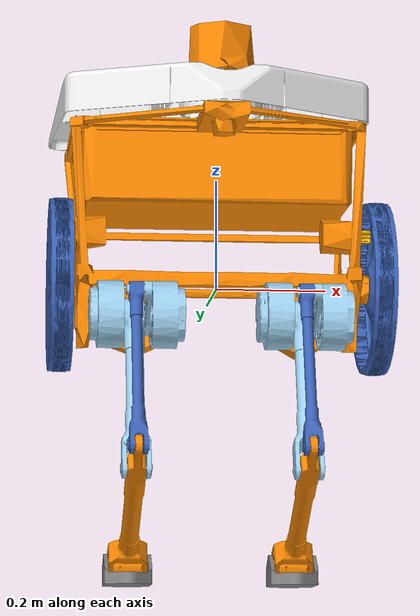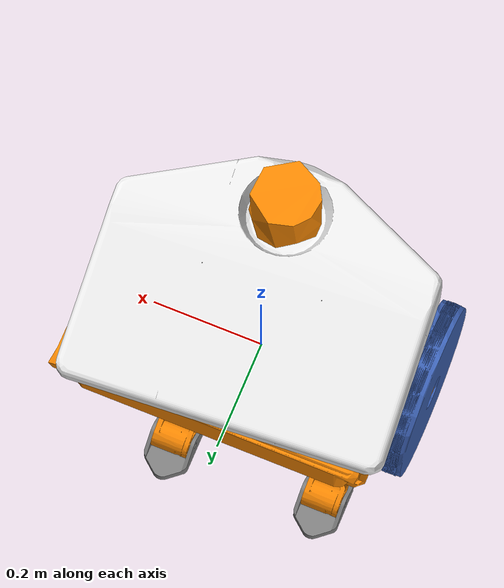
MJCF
<?xml version="1.0" ?>
<!-- Generated using onshape-to-robot -->
<!-- Onshape https://cad.onshape.com/documents/d33ee4be47748debca1f193d/w/b71ca2b26fc569bc49f65e9e/e/9264a6d7363f17e1122831e3 -->
<mujoco model="robot">
  <compiler angle="radian" meshdir="assets" autolimits="true"/>
  <default>
    <default class="robot">
      <joint frictionloss="0.1" armature="0.005"/>
      <position kp="1" dampratio="0.9"/>
      <default class="visual">
        <geom type="mesh" contype="0" conaffinity="0" group="2"/>
      </default>
      <default class="collision">
        <geom group="3"/>
      </default>
    </default>
  </default>
  <worldbody>
    <!-- Link frame -->
    <body name="frame" pos="0 0 0" quat="1 0 0 0" childclass="robot">
      <freejoint name="frame_freejoint"/>
      <inertial pos="-0.000823 0.029329 0.148969" mass="10.9798" fullinertia="0.340511 0.452579 0.318421 -0.000963811 0.00150348 0.0614132"/>
      <!-- Part frame -->
      <geom type="mesh" class="visual" pos="8.32667e-17 0.09279 0.151192" quat="1 0 0 -3.28079e-18" mesh="frame" material="frame_material"/>
      <geom type="mesh" class="collision" pos="8.32667e-17 0.09279 0.151192" quat="1 0 0 -3.28079e-18" mesh="frame" material="frame_material"/>
      <!-- Frame imu -->
      <site group="3" name="imu" pos="-2.77556e-17 -0.0127 0.0281165" quat="1 -0 -0 -3.28079e-18"/>
      <!-- Link wheel -->
      <body name="wheel" pos="-0.2968 -0.0304 -0.000423519" quat="0.5 -0.5 -0.5 0.5">
        <!-- Joint from frame to wheel -->
        <joint axis="0 0 1" name="wheel0" type="hinge"/>
        <inertial pos="-9.89636e-09 -3.55249e-08 -0.007652" mass="0.706823" fullinertia="0.00423992 0.00423992 0.00829168 1.12985e-09 -2.2045e-10 -1.81177e-11"/>
        <!-- Part wheel -->
        <geom type="mesh" class="visual" pos="0.0527022 -0.188111 -0.2968" quat="0.387994 0.591152 0.387994 -0.591152" mesh="wheel" material="wheel_material"/>
        <geom type="mesh" class="collision" pos="0.0527022 -0.188111 -0.2968" quat="0.387994 0.591152 0.387994 -0.591152" mesh="wheel" material="wheel_material"/>
      </body>
      <!-- Link wheel_2 -->
      <body name="wheel_2" pos="0.271842 -0.0304 -0.000423519" quat="0.5 -0.5 -0.5 0.5">
        <!-- Joint from frame to wheel_2 -->
        <joint axis="0 0 1" name="wheel1" type="hinge"/>
        <inertial pos="5.0538e-09 3.65296e-08 -0.0173055" mass="0.706823" fullinertia="0.00423992 0.00423992 0.00829168 -1.22924e-09 1.95045e-10 -1.04326e-10"/>
        <!-- Part wheel_2 -->
        <geom type="mesh" class="visual" pos="0.12319 0.151616 0.271842" quat="0.5 -0.5 -0.5 -0.5" mesh="wheel" material="wheel_material"/>
        <geom type="mesh" class="collision" pos="0.12319 0.151616 0.271842" quat="0.5 -0.5 -0.5 -0.5" mesh="wheel" material="wheel_material"/>
      </body>
      <!-- Link hip -->
      <body name="hip" pos="-0.15 -0.0259 -0.0623635" quat="0.707107 -0.707107 0 1.80763e-29">
        <!-- Joint from frame to hip -->
        <joint axis="0 0 1" name="hip0" type="hinge" range="-0.7853981633974456 0.5235987755983015"/>
        <inertial pos="-8.09567e-09 -3.63132e-09 -0.03801" mass="4.67744" fullinertia="0.0171206 0.025379 0.0167058 8.96117e-05 3.71946e-05 3.68544e-05"/>
        <!-- Part hip -->
        <geom type="mesh" class="visual" pos="0.15 -0.213556 0.11869" quat="0.707107 0.707107 -1.57009e-16 1.37307e-16" mesh="hip" material="hip_material"/>
        <geom type="mesh" class="collision" pos="0.15 -0.213556 0.11869" quat="0.707107 0.707107 -1.57009e-16 1.37307e-16" mesh="hip" material="hip_material"/>
        <!-- Link thigh -->
        <body name="thigh" pos="-0.03125 8.5279e-15 -0.07" quat="0.298836 0.640856 -0.298836 -0.640856">
          <!-- Joint from hip to thigh -->
          <joint axis="0 0 1" name="calf0" type="hinge" range="-1.0471975511966183 5.235987755982968"/>
          <inertial pos="-0.0859122 -0.13192 -0.023536" mass="0.43939" fullinertia="0.00431889 0.00192734 0.00604161 -0.00270689 -0.000102277 -0.00015704"/>
          <!-- Part thigh -->
          <geom type="mesh" class="visual" pos="0.18869 -0.213556 -0.18125" quat="0.5 0.5 0.5 -0.5" mesh="thigh" material="thigh_material"/>
          <geom type="mesh" class="collision" pos="0.18869 -0.213556 -0.18125" quat="0.5 0.5 0.5 -0.5" mesh="thigh" material="thigh_material"/>
          <!-- Frame closing_knee0_2 -->
          <site group="3" name="closing_knee0_2" pos="-0.160754 -0.247736 -0.02625" quat="9.93014e-17 0 1 -6.13716e-17"/>
          <!-- Frame closing_knee0_2_z -->
          <site group="3" name="closing_knee0_2_z" pos="-0.160754 -0.247736 -0.12625" quat="9.93014e-17 0 1 -6.13716e-17"/>
        </body>
        <!-- Link knee_kicker -->
        <body name="knee_kicker" pos="0.03125 -3.86496e-15 -0.07" quat="0.353553 -0.612372 0.353553 -0.612372">
          <!-- Joint from hip to knee_kicker -->
          <joint axis="0 0 1" name="driver0" type="hinge" range="-1.8325957145940461 1.0471975511965974"/>
          <inertial pos="9.25914e-05 0.0340895 -0.0160967" mass="0.178099" fullinertia="0.000233121 5.05159e-05 0.000230519 -4.91553e-07 1.2745e-07 4.73206e-05"/>
          <!-- Part knee_kicker -->
          <geom type="mesh" class="visual" pos="0.18869 0.213556 0.11875" quat="0.5 -0.5 -0.5 -0.5" mesh="knee_kicker" material="knee_kicker_material"/>
          <geom type="mesh" class="collision" pos="0.18869 0.213556 0.11875" quat="0.5 -0.5 -0.5 -0.5" mesh="knee_kicker" material="knee_kicker_material"/>
          <!-- Link align_bar -->
          <body name="align_bar" pos="0.000187756 0.0694547 -0.03625" quat="1 -1.22914e-16 9.95584e-17 1.38731e-17">
            <!-- Joint from knee_kicker to align_bar -->
            <joint axis="0 0 1" name="trochanter0" type="hinge" range="-2.7925268031910697 3.4906585039885165"/>
            <inertial pos="-0.183248 -0.0459481 1.92321e-07" mass="0.185504" fullinertia="0.000147955 0.00228229 0.00240181 -0.000518977 3.20539e-10 -1.26609e-10"/>
            <!-- Part align_bar -->
            <geom type="mesh" class="visual" pos="-0.0709391 0.22642 0.155" quat="0.696364 -0.122788 -0.696364 -0.122788" mesh="align_bar" material="align_bar_material"/>
            <geom type="mesh" class="collision" pos="-0.0709391 0.22642 0.155" quat="0.696364 -0.122788 -0.696364 -0.122788" mesh="align_bar" material="align_bar_material"/>
            <!-- Link calf -->
            <body name="calf" pos="-0.287777 -0.0663291 -1.38778e-16" quat="1 9.71057e-16 -2.28161e-16 1.00171e-13">
              <!-- Joint from align_bar to calf -->
              <joint axis="0 0 1" name="patella0" type="hinge" range="-2.268928027592682 0.8726646259971109"/>
              <inertial pos="0.00155668 -0.267205 0.0022" mass="0.803884" fullinertia="0.0155759 0.000660419 0.0157441 0.00195302 -2.76691e-05 0.000158799"/>
              <!-- Part calf -->
              <geom type="mesh" class="visual" pos="0.349257 -0.103635 0.155" quat="0.5 -0.5 -0.5 -0.5" mesh="calf" material="calf_material"/>
              <geom type="mesh" class="collision" pos="0.349257 -0.103635 0.155" quat="0.5 -0.5 -0.5 -0.5" mesh="calf" material="calf_material"/>
              <!-- Frame closing_knee0_1 -->
              <site group="3" name="closing_knee0_1" pos="-0.000187756 -0.0694547 1.52656e-15" quat="1 0 2.00018e-16 0"/>
              <!-- Frame closing_knee0_1_z -->
              <site group="3" name="closing_knee0_1_z" pos="-0.000187756 -0.0694547 0.1" quat="1 0 2.00018e-16 0"/>
              <!-- Link foot -->
              <body name="foot" pos="-0.000986093 -0.364776 0.0265" quat="7.76214e-16 0.91706 -0.398749 2.81356e-16">
                <!-- Joint from calf to foot -->
                <joint axis="0 0 1" name="ankle0" type="hinge" range="-1.86750229963394 0.22689280275925516"/>
                <inertial pos="-0.00556919 0.0243546 0.0256122" mass="0.257475" fullinertia="0.000225116 0.000525902 0.000396738 -7.25759e-05 1.27307e-06 -5.56728e-06"/>
                <!-- Part foot -->
                <geom type="mesh" class="visual" pos="0.350243 -0.261141 -0.1285" quat="0.5 0.5 0.5 -0.5" mesh="foot" material="foot_material"/>
                <geom type="mesh" class="collision" pos="0.350243 -0.261141 -0.1285" quat="0.5 0.5 0.5 -0.5" mesh="foot" material="foot_material"/>
              </body>
            </body>
          </body>
        </body>
      </body>
      <!-- Link lid_gear -->
      <body name="lid_gear" pos="-1.59109e-14 -0.156188 0.296632" quat="4.61876e-17 -1 0 1.1945e-16">
        <!-- Joint from frame to lid_gear -->
        <joint axis="0 0 1" name="lid_gear" type="hinge"/>
        <inertial pos="2.83267e-11 -2.71741e-11 -0.0145304" mass="0.0269539" fullinertia="3.68187e-06 3.68187e-06 3.96395e-06 -7.82395e-14 2.8598e-16 -2.74358e-16"/>
        <!-- Part lid_gear -->
        <geom type="mesh" class="visual" pos="2.17893e-15 -0.248978 0.14544" quat="0 1 0 0" mesh="lid_gear" material="lid_gear_material"/>
        <geom type="mesh" class="collision" pos="2.17893e-15 -0.248978 0.14544" quat="0 1 0 0" mesh="lid_gear" material="lid_gear_material"/>
      </body>
      <!-- Link lid -->
      <body name="lid" pos="5.76937e-17 -0.10334 0.350282" quat="1 0 0 -3.28079e-18">
        <!-- Joint from frame to lid -->
        <joint axis="0 0 1" name="lid" type="hinge" range="-2.0943951023931953 2.0943951023931953"/>
        <inertial pos="-0.003 0.041901 0.00869678" mass="2.8182" fullinertia="0.0336992 0.0334501 0.0544816 -7.3482e-05 -0.000189806 0.00185238"/>
        <!-- Part lid -->
        <geom type="mesh" class="visual" pos="2.60209e-17 0.19613 -0.20009" quat="1 -0 -0 -3.65811e-18" mesh="lid" material="lid_material"/>
        <geom type="mesh" class="collision" pos="2.60209e-17 0.19613 -0.20009" quat="1 -0 -0 -3.65811e-18" mesh="lid" material="lid_material"/>
      </body>
      <!-- Link wheel_gear -->
      <body name="wheel_gear" pos="-0.277842 0.0470328 0.110162" quat="0.5 0.5 0.5 0.5">
        <!-- Joint from frame to wheel_gear -->
        <joint axis="0 0 1" name="motor0" type="hinge"/>
        <inertial pos="-2.14167e-05 -5.33217e-06 2.77556e-16" mass="0.0457202" fullinertia="3.55972e-06 3.55596e-06 2.94313e-06 9.99754e-10 -5.04485e-23 2.66349e-23"/>
        <!-- Part wheel_gear -->
        <geom type="mesh" class="visual" pos="0.0504398 -0.0351145 0.275542" quat="0.0817215 -0.702369 -0.0817215 -0.702369" mesh="wheel_gear" material="wheel_gear_material"/>
        <geom type="mesh" class="collision" pos="0.0504398 -0.0351145 0.275542" quat="0.0817215 -0.702369 -0.0817215 -0.702369" mesh="wheel_gear" material="wheel_gear_material"/>
      </body>
      <!-- Link wheel_gear_2 -->
      <body name="wheel_gear_2" pos="0.277842 0.0470328 0.110162" quat="0.5 -0.5 -0.5 0.5">
        <!-- Joint from frame to wheel_gear_2 -->
        <joint axis="0 0 1" name="motor1" type="hinge"/>
        <inertial pos="2.72562e-07 2.20689e-05 -1.11022e-16" mass="0.0457202" fullinertia="3.55571e-06 3.55997e-06 2.94313e-06 5.26601e-11 -4.19297e-27 -4.91151e-23"/>
        <!-- Part wheel_gear_2 -->
        <geom type="mesh" class="visual" pos="0.0457572 -0.0410302 -0.275543" quat="0.5 0.5 0.5 -0.5" mesh="wheel_gear" material="wheel_gear_material"/>
        <geom type="mesh" class="collision" pos="0.0457572 -0.0410302 -0.275543" quat="0.5 0.5 0.5 -0.5" mesh="wheel_gear" material="wheel_gear_material"/>
      </body>
      <!-- Link hip_2 -->
      <body name="hip_2" pos="0.15 -0.0259 -0.0623635" quat="0.707107 -0.707107 0 8.09305e-31">
        <!-- Joint from frame to hip_2 -->
        <joint axis="0 0 1" name="hip1" type="hinge" range="-0.5235987755982962 0.7853981633974509"/>
        <inertial pos="-8.09567e-09 -3.63132e-09 -0.03801" mass="4.67744" fullinertia="0.0171206 0.025379 0.0167058 8.96117e-05 3.71946e-05 3.68544e-05"/>
        <!-- Part hip_2 -->
        <geom type="mesh" class="visual" pos="0.15 -0.213556 0.11869" quat="0.707107 0.707107 -1.57009e-16 1.37307e-16" mesh="hip" material="hip_material"/>
        <geom type="mesh" class="collision" pos="0.15 -0.213556 0.11869" quat="0.707107 0.707107 -1.57009e-16 1.37307e-16" mesh="hip" material="hip_material"/>
        <!-- Link thigh_2 -->
        <body name="thigh_2" pos="-0.03125 1.85199e-14 -0.07" quat="0.298836 0.640856 -0.298836 -0.640856">
          <!-- Joint from hip_2 to thigh_2 -->
          <joint axis="0 0 1" name="calf1" type="hinge" range="-1.0471975511965925 5.235987755982994"/>
          <inertial pos="-0.0859122 -0.13192 -0.023536" mass="0.43939" fullinertia="0.00431889 0.00192734 0.00604161 -0.00270689 -0.000102277 -0.00015704"/>
          <!-- Part thigh_2 -->
          <geom type="mesh" class="visual" pos="0.18869 -0.213556 -0.18125" quat="0.5 0.5 0.5 -0.5" mesh="thigh" material="thigh_material"/>
          <geom type="mesh" class="collision" pos="0.18869 -0.213556 -0.18125" quat="0.5 0.5 0.5 -0.5" mesh="thigh" material="thigh_material"/>
          <!-- Frame closing_knee1_2 -->
          <site group="3" name="closing_knee1_2" pos="-0.160754 -0.247736 -0.02625" quat="6.57792e-17 0 1 -9.60531e-17"/>
          <!-- Frame closing_knee1_2_z -->
          <site group="3" name="closing_knee1_2_z" pos="-0.160754 -0.247736 -0.12625" quat="6.57792e-17 0 1 -9.60531e-17"/>
        </body>
        <!-- Link knee_kicker_2 -->
        <body name="knee_kicker_2" pos="0.03125 1.15394e-14 -0.07" quat="0.353553 -0.612372 0.353553 -0.612372">
          <!-- Joint from hip_2 to knee_kicker_2 -->
          <joint axis="0 0 1" name="driver1" type="hinge" range="-1.832595714594046 1.0471975511965976"/>
          <inertial pos="9.25914e-05 0.0340895 -0.0160967" mass="0.178099" fullinertia="0.000233121 5.05159e-05 0.000230519 -4.91553e-07 1.2745e-07 4.73206e-05"/>
          <!-- Part knee_kicker_2 -->
          <geom type="mesh" class="visual" pos="0.18869 0.213556 0.11875" quat="0.5 -0.5 -0.5 -0.5" mesh="knee_kicker" material="knee_kicker_material"/>
          <geom type="mesh" class="collision" pos="0.18869 0.213556 0.11875" quat="0.5 -0.5 -0.5 -0.5" mesh="knee_kicker" material="knee_kicker_material"/>
          <!-- Link align_bar_2 -->
          <body name="align_bar_2" pos="0.000187756 0.0694547 -0.03625" quat="1 -1.12026e-16 5.74071e-17 1.86344e-17">
            <!-- Joint from knee_kicker_2 to align_bar_2 -->
            <joint axis="0 0 1" name="trochanter1" type="hinge" range="-2.7925268031910813 3.490658503988505"/>
            <inertial pos="-0.183248 -0.0459481 1.92321e-07" mass="0.185504" fullinertia="0.000147955 0.00228229 0.00240181 -0.000518977 3.20539e-10 -1.26609e-10"/>
            <!-- Part align_bar_2 -->
            <geom type="mesh" class="visual" pos="-0.0709391 0.22642 0.155" quat="0.696364 -0.122788 -0.696364 -0.122788" mesh="align_bar" material="align_bar_material"/>
            <geom type="mesh" class="collision" pos="-0.0709391 0.22642 0.155" quat="0.696364 -0.122788 -0.696364 -0.122788" mesh="align_bar" material="align_bar_material"/>
            <!-- Link calf_2 -->
            <body name="calf_2" pos="-0.287777 -0.0663291 9.71445e-16" quat="1 1.90759e-15 7.01339e-16 1.02054e-13">
              <!-- Joint from align_bar_2 to calf_2 -->
              <joint axis="0 0 1" name="patella1" type="hinge" range="-2.268928027592674 0.8726646259971189"/>
              <inertial pos="0.00155668 -0.267205 0.0022" mass="0.803884" fullinertia="0.0155759 0.000660419 0.0157441 0.00195302 -2.76691e-05 0.000158799"/>
              <!-- Part calf_2 -->
              <geom type="mesh" class="visual" pos="0.349257 -0.103635 0.155" quat="0.5 -0.5 -0.5 -0.5" mesh="calf" material="calf_material"/>
              <geom type="mesh" class="collision" pos="0.349257 -0.103635 0.155" quat="0.5 -0.5 -0.5 -0.5" mesh="calf" material="calf_material"/>
              <!-- Frame closing_knee1_1 -->
              <site group="3" name="closing_knee1_1" pos="-0.000187756 -0.0694547 1.52656e-15" quat="1 -6.78668e-18 3.81527e-17 0"/>
              <!-- Frame closing_knee1_1_z -->
              <site group="3" name="closing_knee1_1_z" pos="-0.000187756 -0.0694547 0.1" quat="1 -6.78668e-18 3.81527e-17 0"/>
              <!-- Link foot_2 -->
              <body name="foot_2" pos="-0.000986093 -0.364776 0.0265" quat="7.75886e-16 0.91706 -0.398749 2.81498e-16">
                <!-- Joint from calf_2 to foot_2 -->
                <joint axis="0 0 1" name="ankle1" type="hinge" range="-1.8675022996339332 0.22689280275926216"/>
                <inertial pos="-0.00556919 0.0243546 0.0256122" mass="0.257475" fullinertia="0.000225116 0.000525902 0.000396738 -7.25759e-05 1.27307e-06 -5.56728e-06"/>
                <!-- Part foot_2 -->
                <geom type="mesh" class="visual" pos="0.350243 -0.261141 -0.1285" quat="0.5 0.5 0.5 -0.5" mesh="foot" material="foot_material"/>
                <geom type="mesh" class="collision" pos="0.350243 -0.261141 -0.1285" quat="0.5 0.5 0.5 -0.5" mesh="foot" material="foot_material"/>
              </body>
            </body>
          </body>
        </body>
      </body>
    </body>
  </worldbody>
  <asset>
    <mesh file="align_bar.stl"/>
    <mesh file="frame.stl"/>
    <mesh file="knee_kicker.stl"/>
    <mesh file="hip.stl"/>
    <mesh file="wheel.stl"/>
    <mesh file="thigh.stl"/>
    <mesh file="calf.stl"/>
    <mesh file="foot.stl"/>
    <mesh file="wheel_gear.stl"/>
    <mesh file="lid.stl"/>
    <mesh file="lid_gear.stl"/>
    <material name="frame_material" rgba="0.972549 0.529412 0.00392157 1"/>
    <material name="wheel_material" rgba="0.231373 0.380392 0.705882 1"/>
    <material name="hip_material" rgba="0.615686 0.811765 0.929412 1"/>
    <material name="thigh_material" rgba="0.615686 0.811765 0.929412 1"/>
    <material name="knee_kicker_material" rgba="0.615686 0.811765 0.929412 1"/>
    <material name="align_bar_material" rgba="0.231373 0.380392 0.705882 1"/>
    <material name="calf_material" rgba="0.972549 0.529412 0.00392157 1"/>
    <material name="foot_material" rgba="0.498039 0.498039 0.498039 1"/>
    <material name="lid_gear_material" rgba="0.768627 0.886275 0.952941 1"/>
    <material name="lid_material" rgba="0.917647 0.917647 0.917647 1"/>
    <material name="wheel_gear_material" rgba="0.980392 0.713725 0.00392157 1"/>
  </asset>
  <actuator>
    <position class="robot" name="hip0" joint="hip0" forcerange="-120 120" inheritrange="1"/>
    <position class="robot" name="calf0" joint="calf0" forcerange="-120 120" inheritrange="1"/>
    <position class="robot" name="driver0" joint="driver0" forcerange="-120 120" inheritrange="1"/>
    <position class="robot" name="trochanter0" joint="trochanter0" inheritrange="1"/>
    <position class="robot" name="patella0" joint="patella0" inheritrange="1"/>
    <position class="robot" name="ankle0" joint="ankle0" forcerange="-15 15" inheritrange="1"/>
    <position class="robot" name="lid_gear" joint="lid_gear" forcerange="-5 5"/>
    <position class="robot" name="motor0" joint="motor0" forcerange="-2 2"/>
    <position class="robot" name="motor1" joint="motor1" forcerange="-2 2"/>
    <position class="robot" name="hip1" joint="hip1" forcerange="-120 120" inheritrange="1"/>
    <position class="robot" name="calf1" joint="calf1" forcerange="-120 120" inheritrange="1"/>
    <position class="robot" name="driver1" joint="driver1" forcerange="-120 120" inheritrange="1"/>
    <position class="robot" name="trochanter1" joint="trochanter1" inheritrange="1"/>
    <position class="robot" name="patella1" joint="patella1" inheritrange="1"/>
    <position class="robot" name="ankle1" joint="ankle1" forcerange="-15 15" inheritrange="1"/>
  </actuator>
  <sensor>
    <gyro name="imu_gyro" site="imu"/>
    <accelerometer name="imu_accel" site="imu"/>
    <jointvel name="jointvel_hip0" joint="hip0"/>
    <jointvel name="jointvel_calf0" joint="calf0"/>
    <jointvel name="jointvel_driver0" joint="driver0"/>
    <jointvel name="jointvel_trochanter0" joint="trochanter0"/>
    <jointvel name="jointvel_patella0" joint="patella0"/>
    <jointvel name="jointvel_ankle0" joint="ankle0"/>
    <jointvel name="jointvel_lid_gear" joint="lid_gear"/>
    <jointvel name="jointvel_motor0" joint="motor0"/>
    <jointvel name="jointvel_motor1" joint="motor1"/>
    <jointvel name="jointvel_hip1" joint="hip1"/>
    <jointvel name="jointvel_calf1" joint="calf1"/>
    <jointvel name="jointvel_driver1" joint="driver1"/>
    <jointvel name="jointvel_trochanter1" joint="trochanter1"/>
    <jointvel name="jointvel_patella1" joint="patella1"/>
    <jointvel name="jointvel_ankle1" joint="ankle1"/>
    <actuatorfrc name="actuatorfrc_hip0" actuator="hip0"/>
    <actuatorfrc name="actuatorfrc_calf0" actuator="calf0"/>
    <actuatorfrc name="actuatorfrc_driver0" actuator="driver0"/>
    <actuatorfrc name="actuatorfrc_trochanter0" actuator="trochanter0"/>
    <actuatorfrc name="actuatorfrc_patella0" actuator="patella0"/>
    <actuatorfrc name="actuatorfrc_ankle0" actuator="ankle0"/>
    <actuatorfrc name="actuatorfrc_lid_gear" actuator="lid_gear"/>
    <actuatorfrc name="actuatorfrc_motor0" actuator="motor0"/>
    <actuatorfrc name="actuatorfrc_motor1" actuator="motor1"/>
    <actuatorfrc name="actuatorfrc_hip1" actuator="hip1"/>
    <actuatorfrc name="actuatorfrc_calf1" actuator="calf1"/>
    <actuatorfrc name="actuatorfrc_driver1" actuator="driver1"/>
    <actuatorfrc name="actuatorfrc_trochanter1" actuator="trochanter1"/>
    <actuatorfrc name="actuatorfrc_patella1" actuator="patella1"/>
    <actuatorfrc name="actuatorfrc_ankle1" actuator="ankle1"/>
  </sensor>
  <equality>
    <connect site1="closing_knee0_1" site2="closing_knee0_2"/>
    <connect site1="closing_knee0_1_z" site2="closing_knee0_2_z"/>
    <connect site1="closing_knee1_1" site2="closing_knee1_2"/>
    <connect site1="closing_knee1_1_z" site2="closing_knee1_2_z"/>
    <joint joint1="wheel0" joint2="motor0" polycoef="0 -0.08275862068965517 0 0 0"/>
    <joint joint1="wheel1" joint2="motor1" polycoef="0 -0.06896551724137931 0 0 0"/>
    <joint joint1="lid" joint2="lid_gear" polycoef="0 0.5 0 0 0"/>
  </equality>
</mujoco>
